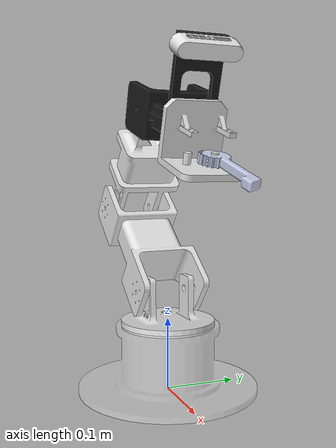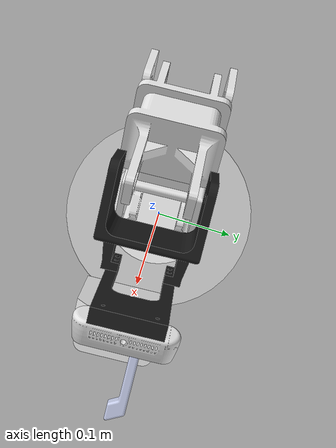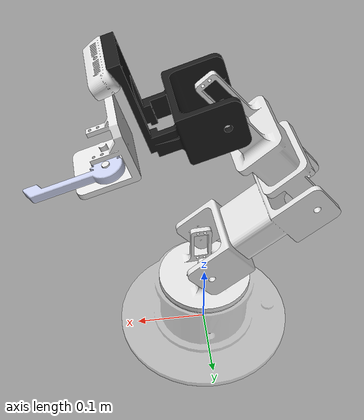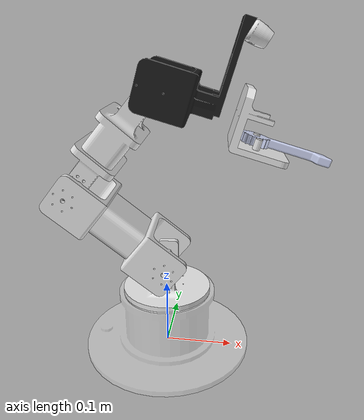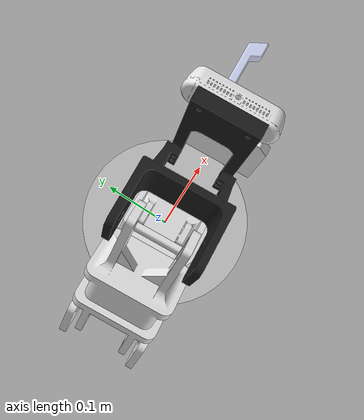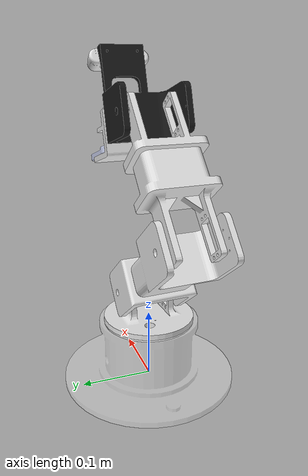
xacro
<?xml version="1.0"?>
<robot xmlns:xacro="http://www.ros.org/wiki/xacro" name="Reference_Assembly44">
    <xacro:arg name="initial_positions_file" default="initial_positions.yaml" />

    <!-- Import Reference_Assembly44 urdf file -->
    <xacro:include filename="$(find arm_description)/urdf/Reference_Assembly44.urdf" />

    <!-- Import control_xacro -->
    <xacro:include filename="Reference_Assembly44.ros2_control.xacro" />

    <xacro:Reference_Assembly44_ros2_control name="FakeSystem" initial_positions_file="$(arg initial_positions_file)"/>

</robot>

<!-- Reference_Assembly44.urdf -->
<robot
  name="Reference_Assembly44">
  <link
    name="base_link">
    <inertial>
      <origin
        xyz="-0.00054420381837245 -0.000172092180119688 0.0289764153009481"
        rpy="0 0 0" />
      <mass
        value="0.74995511898166" />
      <inertia
        ixx="0.00300881122224017"
        ixy="7.04505730019346E-08"
        ixz="3.98409686242448E-06"
        iyy="0.00305676569031836"
        iyz="7.77591095594485E-07"
        izz="0.00471570695756845" />
    </inertial>
    <visual>
      <origin
        xyz="0 0 0"
        rpy="0 0 0" />
      <geometry>
        <mesh
          filename="package://arm_description/meshes/base_link.STL" />
      </geometry>
      <material
        name="">
        <color
          rgba="1 1 1 0.35" />
      </material>
    </visual>
    <collision>
      <origin
        xyz="0 0 0"
        rpy="0 0 0" />
      <geometry>
        <mesh
          filename="package://arm_description/meshes/base_link.STL" />
      </geometry>
    </collision>
  </link>
  <link
    name="Shoulder_R">
    <inertial>
      <origin
        xyz="0.000403078883638784 0.00970799426762278 -0.00104712514433428"
        rpy="0 0 0" />
      <mass
        value="0.154107089212603" />
      <inertia
        ixx="0.000188059857849138"
        ixy="2.92431537638015E-07"
        ixz="7.40368791297859E-07"
        iyy="0.000299228678844809"
        iyz="5.72855168293749E-06"
        izz="0.000169291903518765" />
    </inertial>
    <visual>
      <origin
        xyz="0 0 0"
        rpy="0 0 0" />
      <geometry>
        <mesh
          filename="package://arm_description/meshes/Shoulder_R.STL" />
      </geometry>
      <material
        name="">
        <color
          rgba="0.894117647058823 0.894117647058823 0.894117647058823 1" />
      </material>
    </visual>
    <collision>
      <origin
        xyz="0 0 0"
        rpy="0 0 0" />
      <geometry>
        <mesh
          filename="package://arm_description/meshes/Shoulder_R.STL" />
      </geometry>
    </collision>
  </link>
  <joint
    name="J1"
    type="revolute">
    <origin
      xyz="0 0 0.09"
      rpy="1.5707963267949 0 0.0586972407572865" />
    <parent
      link="base_link" />
    <child
      link="Shoulder_R" />
    <axis
      xyz="0 1 0" />
    <limit
      lower="-2.0944"
      upper="2.0944"
      effort="0"
      velocity="0" />
  </joint>
  <link
    name="Shoulder">
    <inertial>
      <origin
        xyz="-1.53478323106082E-09 0.0844250188331954 3.22156832380707E-05"
        rpy="0 0 0" />
      <mass
        value="0.340539325104864" />
      <inertia
        ixx="0.000556762872289463"
        ixy="4.07473819525691E-12"
        ixz="8.54437238413582E-12"
        iyy="0.000512047037475982"
        iyz="5.25935355125329E-12"
        izz="0.000269464543142404" />
    </inertial>
    <visual>
      <origin
        xyz="0 0 0"
        rpy="0 0 0" />
      <geometry>
        <mesh
          filename="package://arm_description/meshes/Shoulder.STL" />
      </geometry>
      <material
        name="">
        <color
          rgba="0.894117647058823 0.894117647058823 0.894117647058823 1" />
      </material>
    </visual>
    <collision>
      <origin
        xyz="0 0 0"
        rpy="0 0 0" />
      <geometry>
        <mesh
          filename="package://arm_description/meshes/Shoulder.STL" />
      </geometry>
    </collision>
  </link>
  <joint
    name="J2"
    type="revolute">
    <origin
      xyz="0 0.0511999999999999 0"
      rpy="0 0 0.893580588759203" />
    <parent
      link="Shoulder_R" />
    <child
      link="Shoulder" />
    <axis
      xyz="0 0 1" />
    <limit
      lower="-2.5"
      upper="0.7"
      effort="0"
      velocity="0" />
  </joint>
  <link
    name="Elbow">
    <inertial>
      <origin
        xyz="2.18340928670457E-09 -0.104152763907058 -0.00147790913644874"
        rpy="0 0 0" />
      <mass
        value="0.369913477199193" />
      <inertia
        ixx="0.000448543441141068"
        ixy="-1.33091212899539E-11"
        ixz="4.35205538463655E-11"
        iyy="0.000371699137777268"
        iyz="-7.60819728246898E-06"
        izz="0.000271309304104362" />
    </inertial>
    <visual>
      <origin
        xyz="0 0 0"
        rpy="0 0 0" />
      <geometry>
        <mesh
          filename="package://arm_description/meshes/Elbow.STL" />
      </geometry>
      <material
        name="">
        <color
          rgba="0.894117647058823 0.894117647058823 0.894117647058823 1" />
      </material>
    </visual>
    <collision>
      <origin
        xyz="0 0 0"
        rpy="0 0 0" />
      <geometry>
        <mesh
          filename="package://arm_description/meshes/Elbow.STL" />
      </geometry>
    </collision>
  </link>
  <joint
    name="J3"
    type="revolute">
    <origin
      xyz="0 0.16885 0"
      rpy="0 0 1.54911502956067" />
    <parent
      link="Shoulder" />
    <child
      link="Elbow" />
    <axis
      xyz="0 0 -1" />
    <limit
      lower="-3.5416"
      upper="0.55"
      effort="0"
      velocity="0" />
  </joint>
  <link
    name="Wrist_R">
    <inertial>
      <origin
        xyz="-0.0158612226698731 0.0445038516191795 0.000137996415897841"
        rpy="0 0 0" />
      <mass
        value="0.173342751912655" />
      <inertia
        ixx="0.00028758990024656"
        ixy="9.7200200727186E-07"
        ixz="1.15473874947255E-10"
        iyy="0.000282438297669058"
        iyz="7.80579863100199E-07"
        izz="0.000168320034211443" />
    </inertial>
    <visual>
      <origin
        xyz="0 0 0"
        rpy="0 0 0" />
      <geometry>
        <mesh
          filename="package://arm_description/meshes/Wrist_R.STL" />
      </geometry>
      <material
        name="">
        <color
          rgba="0.101960784313725 0.101960784313725 0.101960784313725 1" />
      </material>
    </visual>
    <collision>
      <origin
        xyz="0 0 0"
        rpy="0 0 0" />
      <geometry>
        <mesh
          filename="package://arm_description/meshes/Wrist_R.STL" />
      </geometry>
    </collision>
  </link>
  <joint
    name="J4"
    type="revolute">
    <origin
      xyz="0 -0.1874 0"
      rpy="0 0 1.983" />
    <parent
      link="Elbow" />
    <child
      link="Wrist_R" />
    <axis
      xyz="0 0 1" />
    <limit
      lower="-1.131"
      upper="3.0543"
      effort="0"
      velocity="0" />
  </joint>
  <link
    name="Wrist_P">
    <inertial>
      <origin
        xyz="0.000310689346636155 -0.0180061019798506 0.0149193001086836"
        rpy="0 0 0" />
      <mass
        value="0.110477012892495" />
      <inertia
        ixx="0.000118444279287865"
        ixy="-7.42899071361453E-07"
        ixz="-9.87118985636998E-08"
        iyy="0.00011372480104977"
        iyz="3.40221106402442E-05"
        izz="0.000120723878819873" />
    </inertial>
    <visual>
      <origin
        xyz="0 0 0"
        rpy="0 0 0" />
      <geometry>
        <mesh
          filename="package://arm_description/meshes/Wrist_P.STL" />
      </geometry>
      <material
        name="">
        <color
          rgba="0.894117647058823 0.894117647058823 0.894117647058823 1" />
      </material>
    </visual>
    <collision>
      <origin
        xyz="0 0 0"
        rpy="0 0 0" />
      <geometry>
        <mesh
          filename="package://arm_description/meshes/Wrist_P.STL" />
      </geometry>
    </collision>
  </link>
  <joint
    name="J5"
    type="revolute">
    <origin
      xyz="0 0.11716 0.01"
      rpy="-1.5708 1.5692 0" />
    <parent
      link="Wrist_R" />
    <child
      link="Wrist_P" />
    <axis
      xyz="0 0 1" />
    <limit
      lower="-5"
      upper="5"
      effort="0"
      velocity="0" />
  </joint>
  <link
    name="Gripper">
    <inertial>
      <origin
        xyz="-0.028999998744641 0.040216829296616 0.0199817101036695"
        rpy="0 0 0" />
      <mass
        value="0.0234587021381431" />
      <inertia
        ixx="3.47460384230843E-05"
        ixy="-1.54803392439047E-13"
        ixz="-3.47615457939314E-14"
        iyy="1.70981131636221E-06"
        iyz="1.38472450368426E-07"
        izz="3.35817044614761E-05" />
    </inertial>
    <visual>
      <origin
        xyz="0 0 0"
        rpy="0 0 0" />
      <geometry>
        <mesh
          filename="package://arm_description/meshes/Gripper.STL" />
      </geometry>
      <material
        name="">
        <color
          rgba="0.792156862745098 0.819607843137255 0.933333333333333 1" />
      </material>
    </visual>
    <collision>
      <origin
        xyz="0 0 0"
        rpy="0 0 0" />
      <geometry>
        <mesh
          filename="package://arm_description/meshes/Gripper.STL" />
      </geometry>
    </collision>
  </link>
  <joint
    name="J6"
    type="revolute">
    <origin
      xyz="0 0 0.018905"
      rpy="1.5641 0 1.5708" />
    <parent
      link="Wrist_P" />
    <child
      link="Gripper" />
    <axis
      xyz="1 0 0" />
    <limit
      lower="-5"
      upper="5"
      effort="0"
      velocity="0" />
  </joint>
  <link
    name="Camera">
    <inertial>
      <origin
        xyz="0.000246315098365265 -6.05366355121983E-05 -0.0130483956964289"
        rpy="0 0 0" />
      <mass
        value="0.0447531077608532" />
      <inertia
        ixx="3.94470378773003E-06"
        ixy="-2.79120512245854E-09"
        ixz="2.44349448629853E-07"
        iyy="2.73619877127596E-05"
        iyz="-1.16714597103348E-09"
        izz="2.727742454869E-05" />
    </inertial>
    <visual>
      <origin
        xyz="0 0 0"
        rpy="0 0 3.14159" />
      <geometry>
        <mesh
          filename="package://arm_description/meshes/Camera.STL" />
      </geometry>
      <material
        name="">
        <color
          rgba="0.894117647058823 0.894117647058823 0.894117647058823 1" />
      </material>
    </visual>
    <collision>
      <origin
        xyz="0 0 0"
        rpy="0 0 3.14159" />
      <geometry>
        <mesh
          filename="package://arm_description/meshes/Camera.STL" />
      </geometry>
    </collision>
  </link>
  <joint
    name="J7"
    type="fixed">
    <origin
      xyz="-0.0905287301159827 0.116422510562616 0"
      rpy="1.56723445405752 1.57079631189374 2.87502839714336" />
    <parent
      link="Wrist_R" />
    <child
      link="Camera" />
    <axis
      xyz="0 0 0" />
   </joint>
</robot>
